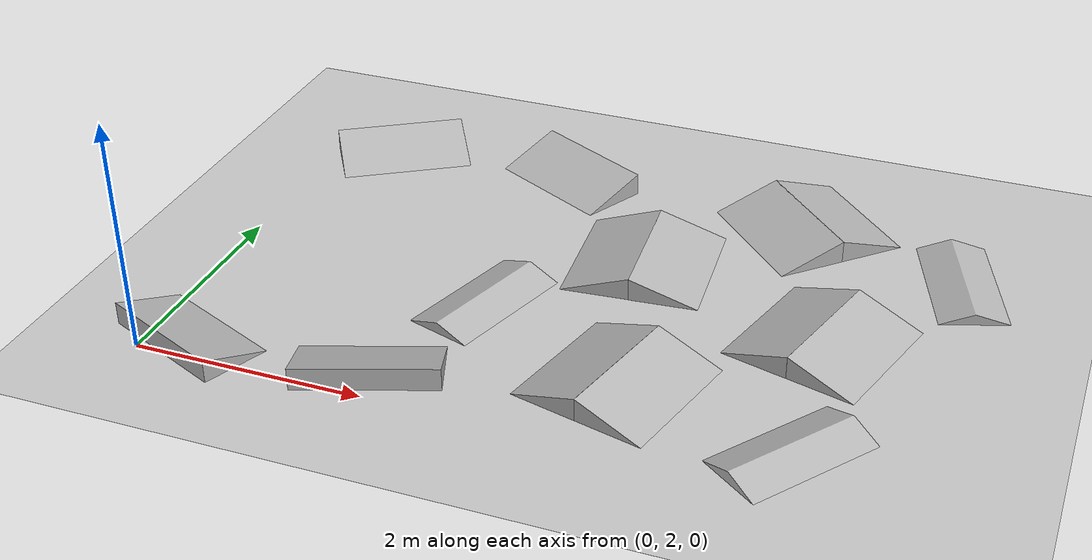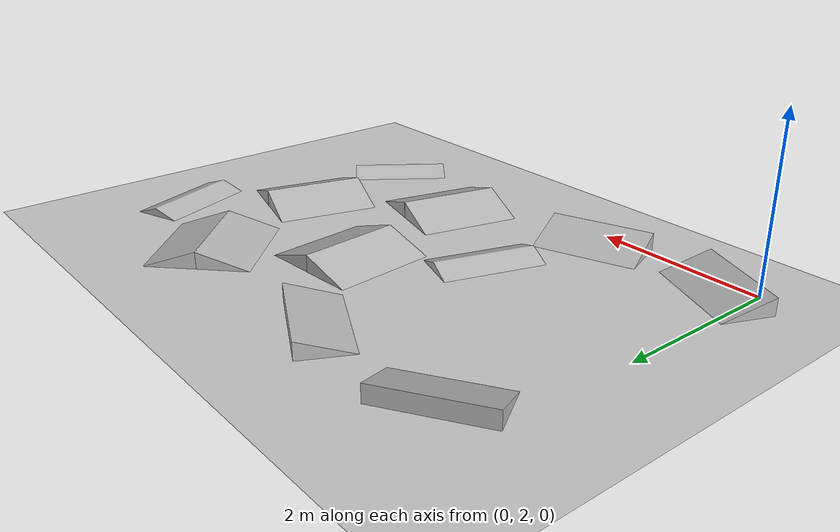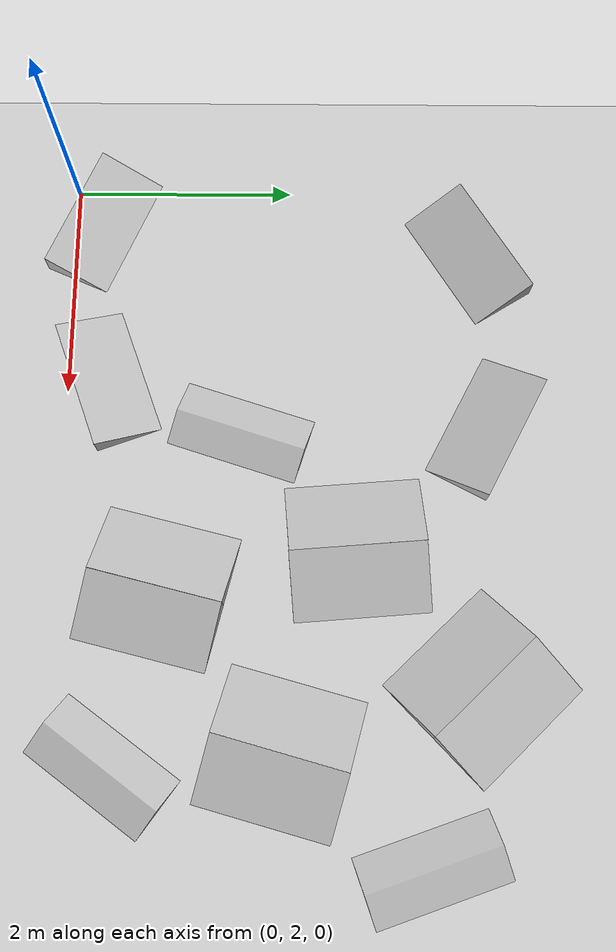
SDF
<sdf version="1.5">
 <world name="default">
  <include><uri>model://sun</uri></include>
  <include><uri>model://ground_plane</uri></include>
  <scene>
   <ambient>0.4 0.4 0.4 1</ambient>
   <background>0.7 0.7 0.7 1</background>
   <shadows>1</shadows>
   <sky><clouds><speed>12</speed></clouds></sky>
  </scene>
  <model name="Obstacle_01">
   <static>1</static>
   <link name="Obstacle_01">
    <inertial>
     <mass>1</mass>
     <inertia>
      <ixx>0.166667</ixx>
      <ixy>0</ixy>
      <ixz>0</ixz>
      <iyy>0.166667</iyy>
      <iyz>0</iyz>
      <izz>0.166667</izz>
     </inertia>
    </inertial>
    <visual name="visual"><geometry><mesh><uri>model://terrain/Obstacle_01.dae</uri></mesh></geometry></visual>
    <collision name="collision">
     <max_contacts>100</max_contacts>
     <geometry><mesh><uri>model://terrain/Obstacle_01.dae</uri></mesh></geometry>
     <surface>
      <bounce><restitution_coefficient>0</restitution_coefficient><threshold>1e+06</threshold></bounce>
      <friction><ode><mu>0.5</mu></ode></friction>
      <contact>
       <collide_without_contact>0</collide_without_contact>
       <collide_without_contact_bitmask>1</collide_without_contact_bitmask>
       <collide_bitmask>1</collide_bitmask>
       <ode>
        <soft_cfm>0.2</soft_cfm>
        <soft_erp>0.2</soft_erp>
        <kp>1e+08</kp>
        <kd>10</kd>
        <max_vel>100</max_vel>
        <min_depth>0.001</min_depth>
       </ode>
      </contact>
     </surface>
    </collision>
   </link>
   <pose>0.654704 5.65501 0 0 0 -2.58427</pose>
  </model>
  <model name="Obstacle_02">
   <static>1</static>
   <link name="Obstacle_02">
    <inertial>
     <mass>1</mass>
     <inertia>
      <ixx>0.166667</ixx>
      <ixy>0</ixy>
      <ixz>0</ixz>
      <iyy>0.166667</iyy>
      <iyz>0</iyz>
      <izz>0.166667</izz>
     </inertia>
    </inertial>
    <visual name="visual"><geometry><mesh><uri>model://terrain/Obstacle_01.dae</uri></mesh></geometry></visual>
    <collision name="collision">
     <max_contacts>100</max_contacts>
     <geometry><mesh><uri>model://terrain/Obstacle_01.dae</uri></mesh></geometry>
     <surface>
      <bounce><restitution_coefficient>0</restitution_coefficient><threshold>1e+06</threshold></bounce>
      <friction><ode><mu>0.5</mu></ode></friction>
      <contact>
       <collide_without_contact>0</collide_without_contact>
       <collide_without_contact_bitmask>1</collide_without_contact_bitmask>
       <collide_bitmask>1</collide_bitmask>
       <ode>
        <soft_cfm>0.2</soft_cfm>
        <soft_erp>0.2</soft_erp>
        <kp>1e+08</kp>
        <kd>10</kd>
        <max_vel>100</max_vel>
        <min_depth>0.001</min_depth>
       </ode>
      </contact>
     </surface>
    </collision>
   </link>
   <pose>2.32746 5.76559 0 0 -0 2.66413</pose>
  </model>
  <model name="Obstacle_03">
   <static>1</static>
   <link name="Obstacle_03">
    <inertial>
     <mass>1</mass>
     <inertia>
      <ixx>0.166667</ixx>
      <ixy>0</ixy>
      <ixz>0</ixz>
      <iyy>0.166667</iyy>
      <iyz>0</iyz>
      <izz>0.166667</izz>
     </inertia>
    </inertial>
    <visual name="visual"><geometry><mesh><uri>model://terrain/Obstacle_01.dae</uri></mesh></geometry></visual>
    <collision name="collision">
     <max_contacts>100</max_contacts>
     <geometry><mesh><uri>model://terrain/Obstacle_01.dae</uri></mesh></geometry>
     <surface>
      <bounce><restitution_coefficient>0</restitution_coefficient><threshold>1e+06</threshold></bounce>
      <friction><ode><mu>0.5</mu></ode></friction>
      <contact>
       <collide_without_contact>0</collide_without_contact>
       <collide_without_contact_bitmask>1</collide_without_contact_bitmask>
       <collide_bitmask>1</collide_bitmask>
       <ode>
        <soft_cfm>0.2</soft_cfm>
        <soft_erp>0.2</soft_erp>
        <kp>1e+08</kp>
        <kd>10</kd>
        <max_vel>100</max_vel>
        <min_depth>0.001</min_depth>
       </ode>
      </contact>
     </surface>
    </collision>
   </link>
   <pose>3.15129 4.59327 0 0 -0 1.65144</pose>
  </model>
  <model name="Obstacle_04">
   <static>1</static>
   <link name="Obstacle_04">
    <inertial>
     <mass>1</mass>
     <inertia>
      <ixx>0.166667</ixx>
      <ixy>0</ixy>
      <ixz>0</ixz>
      <iyy>0.166667</iyy>
      <iyz>0</iyz>
      <izz>0.166667</izz>
     </inertia>
    </inertial>
    <visual name="visual"><geometry><mesh><uri>model://terrain/Obstacle_01.dae</uri></mesh></geometry></visual>
    <collision name="collision">
     <max_contacts>100</max_contacts>
     <geometry><mesh><uri>model://terrain/Obstacle_01.dae</uri></mesh></geometry>
     <surface>
      <bounce><restitution_coefficient>0</restitution_coefficient><threshold>1e+06</threshold></bounce>
      <friction><ode><mu>0.5</mu></ode></friction>
      <contact>
       <collide_without_contact>0</collide_without_contact>
       <collide_without_contact_bitmask>1</collide_without_contact_bitmask>
       <collide_bitmask>1</collide_bitmask>
       <ode>
        <soft_cfm>0.2</soft_cfm>
        <soft_erp>0.2</soft_erp>
        <kp>1e+08</kp>
        <kd>10</kd>
        <max_vel>100</max_vel>
        <min_depth>0.001</min_depth>
       </ode>
      </contact>
     </surface>
    </collision>
   </link>
   <pose>4.85128 5.87638 0 0 0 -0.803416</pose>
  </model>
  <model name="Obstacle_05">
   <static>1</static>
   <link name="Obstacle_05">
    <inertial>
     <mass>1</mass>
     <inertia>
      <ixx>0.166667</ixx>
      <ixy>0</ixy>
      <ixz>0</ixz>
      <iyy>0.166667</iyy>
      <iyz>0</iyz>
      <izz>0.166667</izz>
     </inertia>
    </inertial>
    <visual name="visual"><geometry><mesh><uri>model://terrain/Obstacle_01.dae</uri></mesh></geometry></visual>
    <collision name="collision">
     <max_contacts>100</max_contacts>
     <geometry><mesh><uri>model://terrain/Obstacle_01.dae</uri></mesh></geometry>
     <surface>
      <bounce><restitution_coefficient>0</restitution_coefficient><threshold>1e+06</threshold></bounce>
      <friction><ode><mu>0.5</mu></ode></friction>
      <contact>
       <collide_without_contact>0</collide_without_contact>
       <collide_without_contact_bitmask>1</collide_without_contact_bitmask>
       <collide_bitmask>1</collide_bitmask>
       <ode>
        <soft_cfm>0.2</soft_cfm>
        <soft_erp>0.2</soft_erp>
        <kp>1e+08</kp>
        <kd>10</kd>
        <max_vel>100</max_vel>
        <min_depth>0.001</min_depth>
       </ode>
      </contact>
     </surface>
    </collision>
   </link>
   <pose>4.42103 5.46136 0 0 -0 2.33583</pose>
  </model>
  <model name="Obstacle_06">
   <static>1</static>
   <link name="Obstacle_06">
    <inertial>
     <mass>1</mass>
     <inertia>
      <ixx>0.166667</ixx>
      <ixy>0</ixy>
      <ixz>0</ixz>
      <iyy>0.166667</iyy>
      <iyz>0</iyz>
      <izz>0.166667</izz>
     </inertia>
    </inertial>
    <visual name="visual"><geometry><mesh><uri>model://terrain/Obstacle_01.dae</uri></mesh></geometry></visual>
    <collision name="collision">
     <max_contacts>100</max_contacts>
     <geometry><mesh><uri>model://terrain/Obstacle_01.dae</uri></mesh></geometry>
     <surface>
      <bounce><restitution_coefficient>0</restitution_coefficient><threshold>1e+06</threshold></bounce>
      <friction><ode><mu>0.5</mu></ode></friction>
      <contact>
       <collide_without_contact>0</collide_without_contact>
       <collide_without_contact_bitmask>1</collide_without_contact_bitmask>
       <collide_bitmask>1</collide_bitmask>
       <ode>
        <soft_cfm>0.2</soft_cfm>
        <soft_erp>0.2</soft_erp>
        <kp>1e+08</kp>
        <kd>10</kd>
        <max_vel>100</max_vel>
        <min_depth>0.001</min_depth>
       </ode>
      </contact>
     </surface>
    </collision>
   </link>
   <pose>4.89622 4.04001 0 0 -0 1.30134</pose>
  </model>
  <model name="Obstacle_07">
   <static>1</static>
   <link name="Obstacle_07">
    <inertial>
     <mass>1</mass>
     <inertia>
      <ixx>0.166667</ixx>
      <ixy>0</ixy>
      <ixz>0</ixz>
      <iyy>0.166667</iyy>
      <iyz>0</iyz>
      <izz>0.166667</izz>
     </inertia>
    </inertial>
    <visual name="visual"><geometry><mesh><uri>model://terrain/Obstacle_01.dae</uri></mesh></geometry></visual>
    <collision name="collision">
     <max_contacts>100</max_contacts>
     <geometry><mesh><uri>model://terrain/Obstacle_01.dae</uri></mesh></geometry>
     <surface>
      <bounce><restitution_coefficient>0</restitution_coefficient><threshold>1e+06</threshold></bounce>
      <friction><ode><mu>0.5</mu></ode></friction>
      <contact>
       <collide_without_contact>0</collide_without_contact>
       <collide_without_contact_bitmask>1</collide_without_contact_bitmask>
       <collide_bitmask>1</collide_bitmask>
       <ode>
        <soft_cfm>0.2</soft_cfm>
        <soft_erp>0.2</soft_erp>
        <kp>1e+08</kp>
        <kd>10</kd>
        <max_vel>100</max_vel>
        <min_depth>0.001</min_depth>
       </ode>
      </contact>
     </surface>
    </collision>
   </link>
   <pose>0.351044 2.2612 0 0 0 -0.410163</pose>
  </model>
  <model name="Obstacle_08">
   <static>1</static>
   <link name="Obstacle_08">
    <inertial>
     <mass>1</mass>
     <inertia>
      <ixx>0.166667</ixx>
      <ixy>0</ixy>
      <ixz>0</ixz>
      <iyy>0.166667</iyy>
      <iyz>0</iyz>
      <izz>0.166667</izz>
     </inertia>
    </inertial>
    <visual name="visual"><geometry><mesh><uri>model://terrain/Obstacle_01.dae</uri></mesh></geometry></visual>
    <collision name="collision">
     <max_contacts>100</max_contacts>
     <geometry><mesh><uri>model://terrain/Obstacle_01.dae</uri></mesh></geometry>
     <surface>
      <bounce><restitution_coefficient>0</restitution_coefficient><threshold>1e+06</threshold></bounce>
      <friction><ode><mu>0.5</mu></ode></friction>
      <contact>
       <collide_without_contact>0</collide_without_contact>
       <collide_without_contact_bitmask>1</collide_without_contact_bitmask>
       <collide_bitmask>1</collide_bitmask>
       <ode>
        <soft_cfm>0.2</soft_cfm>
        <soft_erp>0.2</soft_erp>
        <kp>1e+08</kp>
        <kd>10</kd>
        <max_vel>100</max_vel>
        <min_depth>0.001</min_depth>
       </ode>
      </contact>
     </surface>
    </collision>
   </link>
   <pose>1.89688 2.37428 0 0 -0 0.349166</pose>
  </model>
  <model name="Obstacle_09">
   <static>1</static>
   <link name="Obstacle_09">
    <inertial>
     <mass>1</mass>
     <inertia>
      <ixx>0.166667</ixx>
      <ixy>0</ixy>
      <ixz>0</ixz>
      <iyy>0.166667</iyy>
      <iyz>0</iyz>
      <izz>0.166667</izz>
     </inertia>
    </inertial>
    <visual name="visual"><geometry><mesh><uri>model://terrain/Obstacle_01.dae</uri></mesh></geometry></visual>
    <collision name="collision">
     <max_contacts>100</max_contacts>
     <geometry><mesh><uri>model://terrain/Obstacle_01.dae</uri></mesh></geometry>
     <surface>
      <bounce><restitution_coefficient>0</restitution_coefficient><threshold>1e+06</threshold></bounce>
      <friction><ode><mu>0.5</mu></ode></friction>
      <contact>
       <collide_without_contact>0</collide_without_contact>
       <collide_without_contact_bitmask>1</collide_without_contact_bitmask>
       <collide_bitmask>1</collide_bitmask>
       <ode>
        <soft_cfm>0.2</soft_cfm>
        <soft_erp>0.2</soft_erp>
        <kp>1e+08</kp>
        <kd>10</kd>
        <max_vel>100</max_vel>
        <min_depth>0.001</min_depth>
       </ode>
      </contact>
     </surface>
    </collision>
   </link>
   <pose>3.74889 4.63837 0 0 0 -1.48838</pose>
  </model>
  <model name="Obstacle_10">
   <static>1</static>
   <link name="Obstacle_10">
    <inertial>
     <mass>1</mass>
     <inertia>
      <ixx>0.166667</ixx>
      <ixy>0</ixy>
      <ixz>0</ixz>
      <iyy>0.166667</iyy>
      <iyz>0</iyz>
      <izz>0.166667</izz>
     </inertia>
    </inertial>
    <visual name="visual"><geometry><mesh><uri>model://terrain/Obstacle_01.dae</uri></mesh></geometry></visual>
    <collision name="collision">
     <max_contacts>100</max_contacts>
     <geometry><mesh><uri>model://terrain/Obstacle_01.dae</uri></mesh></geometry>
     <surface>
      <bounce><restitution_coefficient>0</restitution_coefficient><threshold>1e+06</threshold></bounce>
      <friction><ode><mu>0.5</mu></ode></friction>
      <contact>
       <collide_without_contact>0</collide_without_contact>
       <collide_without_contact_bitmask>1</collide_without_contact_bitmask>
       <collide_bitmask>1</collide_bitmask>
       <ode>
        <soft_cfm>0.2</soft_cfm>
        <soft_erp>0.2</soft_erp>
        <kp>1e+08</kp>
        <kd>10</kd>
        <max_vel>100</max_vel>
        <min_depth>0.001</min_depth>
       </ode>
      </contact>
     </surface>
    </collision>
   </link>
   <pose>3.51246 2.94848 0 0 -0 1.32415</pose>
  </model>
  <model name="Obstacle_11">
   <static>1</static>
   <link name="Obstacle_11">
    <inertial>
     <mass>1</mass>
     <inertia>
      <ixx>0.166667</ixx>
      <ixy>0</ixy>
      <ixz>0</ixz>
      <iyy>0.166667</iyy>
      <iyz>0</iyz>
      <izz>0.166667</izz>
     </inertia>
    </inertial>
    <visual name="visual"><geometry><mesh><uri>model://terrain/Obstacle_01.dae</uri></mesh></geometry></visual>
    <collision name="collision">
     <max_contacts>100</max_contacts>
     <geometry><mesh><uri>model://terrain/Obstacle_01.dae</uri></mesh></geometry>
     <surface>
      <bounce><restitution_coefficient>0</restitution_coefficient><threshold>1e+06</threshold></bounce>
      <friction><ode><mu>0.5</mu></ode></friction>
      <contact>
       <collide_without_contact>0</collide_without_contact>
       <collide_without_contact_bitmask>1</collide_without_contact_bitmask>
       <collide_bitmask>1</collide_bitmask>
       <ode>
        <soft_cfm>0.2</soft_cfm>
        <soft_erp>0.2</soft_erp>
        <kp>1e+08</kp>
        <kd>10</kd>
        <max_vel>100</max_vel>
        <min_depth>0.001</min_depth>
       </ode>
      </contact>
     </surface>
    </collision>
   </link>
   <pose>4.09609 2.80248 0 0 0 -1.81635</pose>
  </model>
  <model name="Obstacle_12">
   <static>1</static>
   <link name="Obstacle_12">
    <inertial>
     <mass>1</mass>
     <inertia>
      <ixx>0.166667</ixx>
      <ixy>0</ixy>
      <ixz>0</ixz>
      <iyy>0.166667</iyy>
      <iyz>0</iyz>
      <izz>0.166667</izz>
     </inertia>
    </inertial>
    <visual name="visual"><geometry><mesh><uri>model://terrain/Obstacle_01.dae</uri></mesh></geometry></visual>
    <collision name="collision">
     <max_contacts>100</max_contacts>
     <geometry><mesh><uri>model://terrain/Obstacle_01.dae</uri></mesh></geometry>
     <surface>
      <bounce><restitution_coefficient>0</restitution_coefficient><threshold>1e+06</threshold></bounce>
      <friction><ode><mu>0.5</mu></ode></friction>
      <contact>
       <collide_without_contact>0</collide_without_contact>
       <collide_without_contact_bitmask>1</collide_without_contact_bitmask>
       <collide_bitmask>1</collide_bitmask>
       <ode>
        <soft_cfm>0.2</soft_cfm>
        <soft_erp>0.2</soft_erp>
        <kp>1e+08</kp>
        <kd>10</kd>
        <max_vel>100</max_vel>
        <min_depth>0.001</min_depth>
       </ode>
      </contact>
     </surface>
    </collision>
   </link>
   <pose>5.47358 3.88213 0 0 0 -1.84034</pose>
  </model>
  <model name="Obstacle_s_01">
   <static>1</static>
   <link name="Obstacle_s_01">
    <inertial>
     <mass>1</mass>
     <inertia>
      <ixx>0.166667</ixx>
      <ixy>0</ixy>
      <ixz>0</ixz>
      <iyy>0.166667</iyy>
      <iyz>0</iyz>
      <izz>0.166667</izz>
     </inertia>
    </inertial>
    <visual name="visual"><geometry><mesh><uri>model://terrain/Obstacle_02.dae</uri></mesh></geometry></visual>
    <collision name="collision">
     <max_contacts>100</max_contacts>
     <geometry><mesh><uri>model://terrain/Obstacle_02.dae</uri></mesh></geometry>
     <surface>
      <bounce><restitution_coefficient>0</restitution_coefficient><threshold>1e+06</threshold></bounce>
      <friction><ode><mu>0.5</mu></ode></friction>
      <contact>
       <collide_without_contact>0</collide_without_contact>
       <collide_without_contact_bitmask>1</collide_without_contact_bitmask>
       <collide_bitmask>1</collide_bitmask>
       <ode>
        <soft_cfm>0.2</soft_cfm>
        <soft_erp>0.2</soft_erp>
        <kp>1e+08</kp>
        <kd>10</kd>
        <max_vel>100</max_vel>
        <min_depth>0.001</min_depth>
       </ode>
      </contact>
     </surface>
    </collision>
   </link>
   <pose>2.38293 3.57767 0 0 -0 1.25932</pose>
  </model>
  <model name="Obstacle_s_02">
   <static>1</static>
   <link name="Obstacle_s_02">
    <inertial>
     <mass>1</mass>
     <inertia>
      <ixx>0.166667</ixx>
      <ixy>0</ixy>
      <ixz>0</ixz>
      <iyy>0.166667</iyy>
      <iyz>0</iyz>
      <izz>0.166667</izz>
     </inertia>
    </inertial>
    <visual name="visual"><geometry><mesh><uri>model://terrain/Obstacle_02.dae</uri></mesh></geometry></visual>
    <collision name="collision">
     <max_contacts>100</max_contacts>
     <geometry><mesh><uri>model://terrain/Obstacle_02.dae</uri></mesh></geometry>
     <surface>
      <bounce><restitution_coefficient>0</restitution_coefficient><threshold>1e+06</threshold></bounce>
      <friction><ode><mu>0.5</mu></ode></friction>
      <contact>
       <collide_without_contact>0</collide_without_contact>
       <collide_without_contact_bitmask>1</collide_without_contact_bitmask>
       <collide_bitmask>1</collide_bitmask>
       <ode>
        <soft_cfm>0.2</soft_cfm>
        <soft_erp>0.2</soft_erp>
        <kp>1e+08</kp>
        <kd>10</kd>
        <max_vel>100</max_vel>
        <min_depth>0.001</min_depth>
       </ode>
      </contact>
     </surface>
    </collision>
   </link>
   <pose>5.30405 2.47699 0 0 -0 0.940717</pose>
  </model>
  <model name="Obstacle_s_03">
   <static>1</static>
   <link name="Obstacle_s_03">
    <inertial>
     <mass>1</mass>
     <inertia>
      <ixx>0.166667</ixx>
      <ixy>0</ixy>
      <ixz>0</ixz>
      <iyy>0.166667</iyy>
      <iyz>0</iyz>
      <izz>0.166667</izz>
     </inertia>
    </inertial>
    <visual name="visual"><geometry><mesh><uri>model://terrain/Obstacle_02.dae</uri></mesh></geometry></visual>
    <collision name="collision">
     <max_contacts>100</max_contacts>
     <geometry><mesh><uri>model://terrain/Obstacle_02.dae</uri></mesh></geometry>
     <surface>
      <bounce><restitution_coefficient>0</restitution_coefficient><threshold>1e+06</threshold></bounce>
      <friction><ode><mu>0.5</mu></ode></friction>
      <contact>
       <collide_without_contact>0</collide_without_contact>
       <collide_without_contact_bitmask>1</collide_without_contact_bitmask>
       <collide_bitmask>1</collide_bitmask>
       <ode>
        <soft_cfm>0.2</soft_cfm>
        <soft_erp>0.2</soft_erp>
        <kp>1e+08</kp>
        <kd>10</kd>
        <max_vel>100</max_vel>
        <min_depth>0.001</min_depth>
       </ode>
      </contact>
     </surface>
    </collision>
   </link>
   <pose>6.09779 5.21692 0 0 0 -1.23396</pose>
  </model>
 </world>
</sdf>
